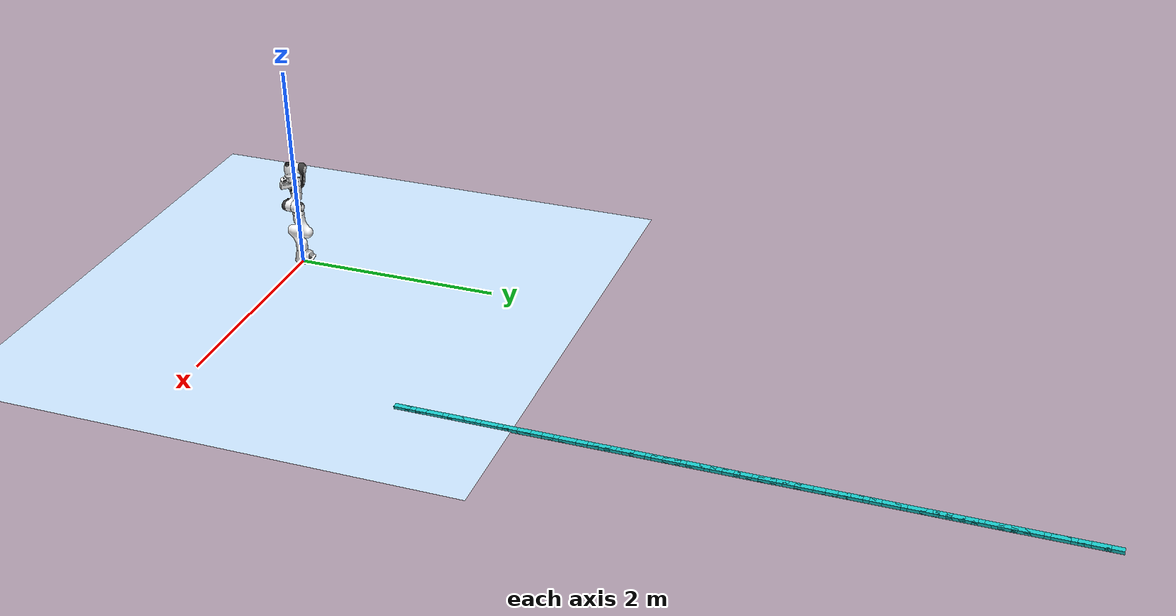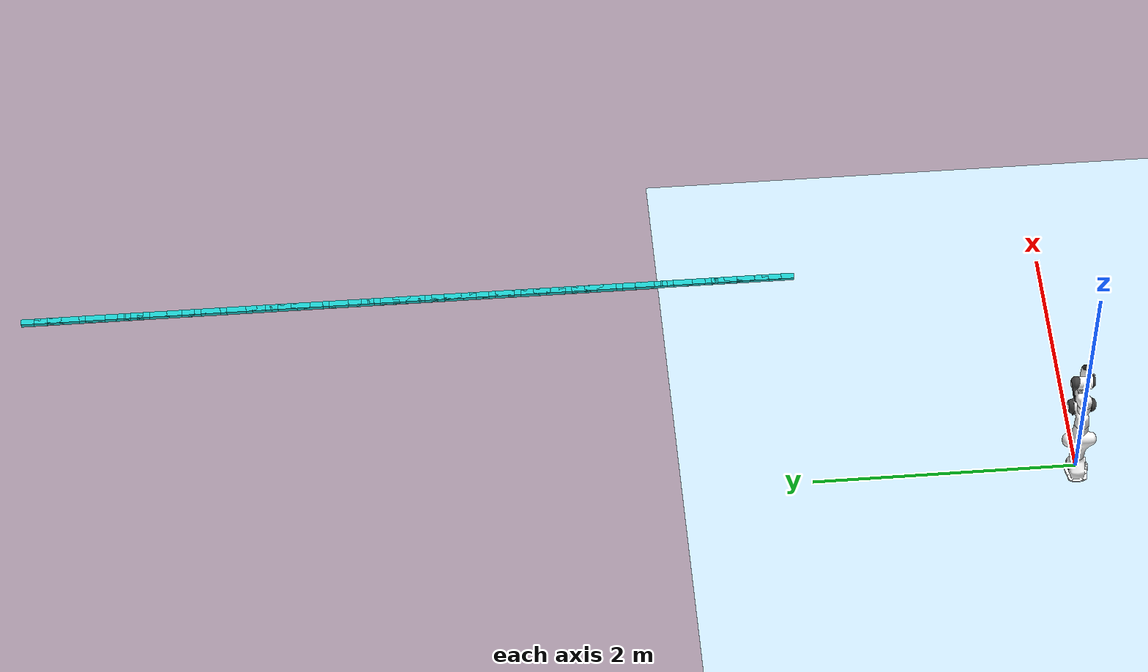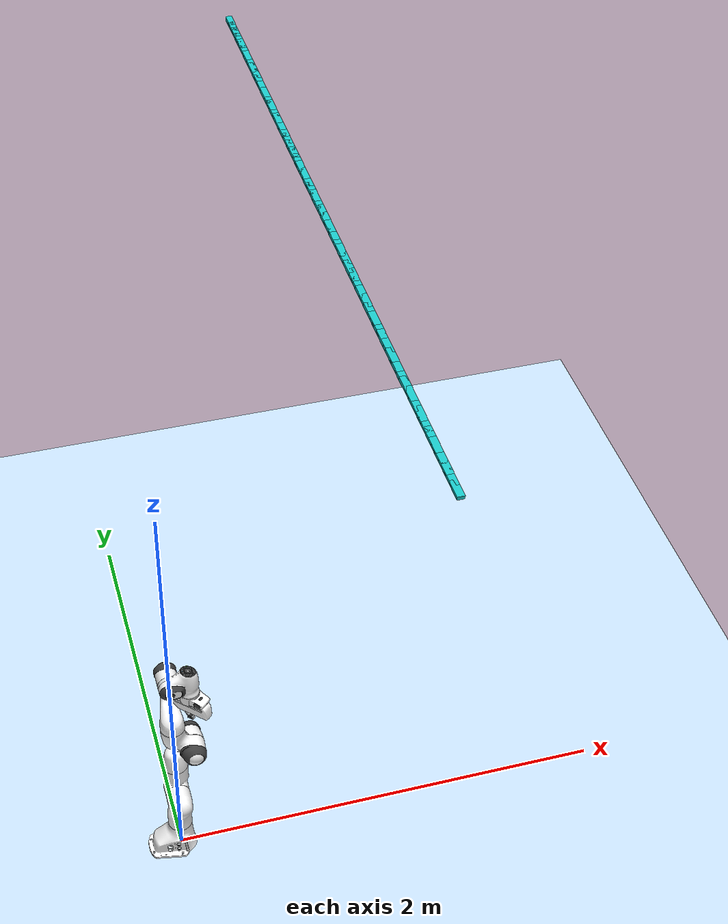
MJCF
<?xml version='1.0' encoding='utf-8'?>
<mujoco model="panda">
  <compiler angle="radian" meshdir="assets" autolimits="true" />

  <option integrator="implicit" />
  <option gravity="0 0 -9.81" />

  <default>
    <default class="panda">
      <material specular="0.5" shininess="0.25" />
      <joint armature="0.1" damping="1" axis="0 0 1" range="-2.8973 2.8973" />
      <general dyntype="none" biastype="none" ctrlrange="-87 87" forcerange="-87 87" />
      <default class="finger">
        <joint axis="0 1 0" type="slide" range="0 0.04" />
      </default>

      <default class="visual">
        <geom type="mesh" contype="0" conaffinity="0" group="2" />
      </default>
      <default class="collision">
        <geom type="mesh" group="3" />
        <default class="fingertip_pad_collision_1">
          <geom type="box" size="0.0085 0.004 0.0085" pos="0 0.0055 0.0445" />
        </default>
        <default class="fingertip_pad_collision_2">
          <geom type="box" size="0.003 0.002 0.003" pos="0.0055 0.002 0.05" />
        </default>
        <default class="fingertip_pad_collision_3">
          <geom type="box" size="0.003 0.002 0.003" pos="-0.0055 0.002 0.05" />
        </default>
        <default class="fingertip_pad_collision_4">
          <geom type="box" size="0.003 0.002 0.0035" pos="0.0055 0.002 0.0395" />
        </default>
        <default class="fingertip_pad_collision_5">
          <geom type="box" size="0.003 0.002 0.0035" pos="-0.0055 0.002 0.0395" />
        </default>
      </default>
    </default>
  </default>

  <asset>
    <material class="panda" name="white" rgba="1 1 1 1" />
    <material class="panda" name="off_white" rgba="0.901961 0.921569 0.929412 1" />
    <material class="panda" name="black" rgba="0.25 0.25 0.25 1" />
    <material class="panda" name="green" rgba="0 1 0 1" />
    <material class="panda" name="light_blue" rgba="0.039216 0.541176 0.780392 1" />

    <mesh name="link0_c" file="link0.stl" />
    <mesh name="link1_c" file="link1.stl" />
    <mesh name="link2_c" file="link2.stl" />
    <mesh name="link3_c" file="link3.stl" />
    <mesh name="link4_c" file="link4.stl" />
    <mesh name="link5_c0" file="link5_collision_0.obj" />
    <mesh name="link5_c1" file="link5_collision_1.obj" />
    <mesh name="link5_c2" file="link5_collision_2.obj" />
    <mesh name="link6_c" file="link6.stl" />
    <mesh name="link7_c" file="link7.stl" />
    <mesh name="hand_c" file="hand.stl" />

    <mesh file="link0_0.obj" />
    <mesh file="link0_1.obj" />
    <mesh file="link0_2.obj" />
    <mesh file="link0_3.obj" />
    <mesh file="link0_4.obj" />
    <mesh file="link0_5.obj" />
    <mesh file="link0_7.obj" />
    <mesh file="link0_8.obj" />
    <mesh file="link0_9.obj" />
    <mesh file="link0_10.obj" />
    <mesh file="link0_11.obj" />
    <mesh file="link1.obj" />
    <mesh file="link2.obj" />
    <mesh file="link3_0.obj" />
    <mesh file="link3_1.obj" />
    <mesh file="link3_2.obj" />
    <mesh file="link3_3.obj" />
    <mesh file="link4_0.obj" />
    <mesh file="link4_1.obj" />
    <mesh file="link4_2.obj" />
    <mesh file="link4_3.obj" />
    <mesh file="link5_0.obj" />
    <mesh file="link5_1.obj" />
    <mesh file="link5_2.obj" />
    <mesh file="link6_0.obj" />
    <mesh file="link6_1.obj" />
    <mesh file="link6_2.obj" />
    <mesh file="link6_3.obj" />
    <mesh file="link6_4.obj" />
    <mesh file="link6_5.obj" />
    <mesh file="link6_6.obj" />
    <mesh file="link6_7.obj" />
    <mesh file="link6_8.obj" />
    <mesh file="link6_9.obj" />
    <mesh file="link6_10.obj" />
    <mesh file="link6_11.obj" />
    <mesh file="link6_12.obj" />
    <mesh file="link6_13.obj" />
    <mesh file="link6_14.obj" />
    <mesh file="link6_15.obj" />
    <mesh file="link6_16.obj" />
    <mesh file="link7_0.obj" />
    <mesh file="link7_1.obj" />
    <mesh file="link7_2.obj" />
    <mesh file="link7_3.obj" />
    <mesh file="link7_4.obj" />
    <mesh file="link7_5.obj" />
    <mesh file="link7_6.obj" />
    <mesh file="link7_7.obj" />
    <mesh file="hand_0.obj" />
    <mesh file="hand_1.obj" />
    <mesh file="hand_2.obj" />
    <mesh file="hand_3.obj" />
    <mesh file="hand_4.obj" />
    <mesh file="finger_0.obj" />
    <mesh file="finger_1.obj" />
  </asset>

  <worldbody>
    <light name="top" pos="0 0 2" mode="trackcom" />
    <body name="link0" childclass="panda">
      <inertial mass="0.629769" pos="-0.041018 -0.00014 0.049974" fullinertia="0.00315 0.00388 0.004285 8.2904e-7 0.00015 8.2299e-6" />
      <geom mesh="link0_0" material="off_white" class="visual" />
      <geom mesh="link0_1" material="black" class="visual" />
      <geom mesh="link0_2" material="off_white" class="visual" />
      <geom mesh="link0_3" material="black" class="visual" />
      <geom mesh="link0_4" material="off_white" class="visual" />
      <geom mesh="link0_5" material="black" class="visual" />
      <geom mesh="link0_7" material="white" class="visual" />
      <geom mesh="link0_8" material="white" class="visual" />
      <geom mesh="link0_9" material="black" class="visual" />
      <geom mesh="link0_10" material="off_white" class="visual" />
      <geom mesh="link0_11" material="white" class="visual" />
      <geom mesh="link0_c" class="collision" />
      <body name="link1" pos="0 0 0.333">
        <inertial mass="4.970684" pos="0.003875 0.002081 -0.04762" fullinertia="0.70337 0.70661 0.0091170 -0.00013900 0.0067720 0.019169" />
        <joint name="joint1" />
        <geom material="white" mesh="link1" class="visual" />
        <geom mesh="link1_c" class="collision" />
        <body name="link2" quat="1 -1 0 0">
          <inertial mass="0.646926" pos="-0.003141 -0.02872 0.003495" fullinertia="0.0079620 2.8110e-2 2.5995e-2 -3.925e-3 1.0254e-2 7.04e-4" />
          <joint name="joint2" range="-1.7628 1.7628" />
          <geom material="white" mesh="link2" class="visual" />
          <geom mesh="link2_c" class="collision" />
          <body name="link3" pos="0 -0.316 0" quat="1 1 0 0">
            <joint name="joint3" />
            <inertial mass="3.228604" pos="2.7518e-2 3.9252e-2 -6.6502e-2" fullinertia="3.7242e-2 3.6155e-2 1.083e-2 -4.761e-3 -1.1396e-2 -1.2805e-2" />
            <geom mesh="link3_0" material="white" class="visual" />
            <geom mesh="link3_1" material="white" class="visual" />
            <geom mesh="link3_2" material="white" class="visual" />
            <geom mesh="link3_3" material="black" class="visual" />
            <geom mesh="link3_c" class="collision" />
            <body name="link4" pos="0.0825 0 0" quat="1 1 0 0">
              <inertial mass="3.587895" pos="-5.317e-2 1.04419e-1 2.7454e-2" fullinertia="2.5853e-2 1.9552e-2 2.8323e-2 7.796e-3 -1.332e-3 8.641e-3" />
              <joint name="joint4" range="-3.0718 -0.0698" />
              <geom mesh="link4_0" material="white" class="visual" />
              <geom mesh="link4_1" material="white" class="visual" />
              <geom mesh="link4_2" material="black" class="visual" />
              <geom mesh="link4_3" material="white" class="visual" />
              <geom mesh="link4_c" class="collision" />
              <body name="link5" pos="-0.0825 0.384 0" quat="1 -1 0 0">
                <inertial mass="1.225946" pos="-1.1953e-2 4.1065e-2 -3.8437e-2" fullinertia="3.5549e-2 2.9474e-2 8.627e-3 -2.117e-3 -4.037e-3 2.29e-4" />
                <joint name="joint5" />
                <geom mesh="link5_0" material="black" class="visual" />
                <geom mesh="link5_1" material="white" class="visual" />
                <geom mesh="link5_2" material="white" class="visual" />
                <geom mesh="link5_c0" class="collision" />
                <geom mesh="link5_c1" class="collision" />
                <geom mesh="link5_c2" class="collision" />
                <body name="link6" quat="1 1 0 0">
                  <inertial mass="1.666555" pos="6.0149e-2 -1.4117e-2 -1.0517e-2" fullinertia="1.964e-3 4.354e-3 5.433e-3 1.09e-4 -1.158e-3 3.41e-4" />
                  <joint name="joint6" range="-0.0175 3.7525" />
                  <geom mesh="link6_0" material="off_white" class="visual" />
                  <geom mesh="link6_1" material="white" class="visual" />
                  <geom mesh="link6_2" material="black" class="visual" />
                  <geom mesh="link6_3" material="white" class="visual" />
                  <geom mesh="link6_4" material="white" class="visual" />
                  <geom mesh="link6_5" material="white" class="visual" />
                  <geom mesh="link6_6" material="white" class="visual" />
                  <geom mesh="link6_7" material="light_blue" class="visual" />
                  <geom mesh="link6_8" material="light_blue" class="visual" />
                  <geom mesh="link6_9" material="black" class="visual" />
                  <geom mesh="link6_10" material="black" class="visual" />
                  <geom mesh="link6_11" material="white" class="visual" />
                  <geom mesh="link6_12" material="green" class="visual" />
                  <geom mesh="link6_13" material="white" class="visual" />
                  <geom mesh="link6_14" material="black" class="visual" />
                  <geom mesh="link6_15" material="black" class="visual" />
                  <geom mesh="link6_16" material="white" class="visual" />
                  <geom mesh="link6_c" class="collision" />
                  <body name="link7" pos="0.088 0 0" quat="1 1 0 0">
                    <inertial mass="7.35522e-01" pos="1.0517e-2 -4.252e-3 6.1597e-2" fullinertia="1.2516e-2 1.0027e-2 4.815e-3 -4.28e-4 -1.196e-3 -7.41e-4" />
                    <joint name="joint7" />
                    <geom mesh="link7_0" material="white" class="visual" />
                    <geom mesh="link7_1" material="black" class="visual" />
                    <geom mesh="link7_2" material="black" class="visual" />
                    <geom mesh="link7_3" material="black" class="visual" />
                    <geom mesh="link7_4" material="black" class="visual" />
                    <geom mesh="link7_5" material="black" class="visual" />
                    <geom mesh="link7_6" material="black" class="visual" />
                    <geom mesh="link7_7" material="white" class="visual" />
                    <geom mesh="link7_c" class="collision" />
                    <body name="hand" pos="0 0 0.107" quat="0.9238795 0 0 -0.3826834">
                      <inertial mass="0.73" pos="-0.01 0 0.03" diaginertia="0.001 0.0025 0.0017" />
                      <geom mesh="hand_0" material="off_white" class="visual" />
                      <geom mesh="hand_1" material="black" class="visual" />
                      <geom mesh="hand_2" material="black" class="visual" />
                      <geom mesh="hand_3" material="white" class="visual" />
                      <geom mesh="hand_4" material="off_white" class="visual" />
                      <geom mesh="hand_c" class="collision" />
                      <body name="left_finger" pos="0 0 0.0584">
                        <inertial mass="0.015" pos="0 0 0" diaginertia="2.375e-6 2.375e-6 7.5e-7" />
                        <joint name="finger_joint1" class="finger" />
                        <geom mesh="finger_0" material="off_white" class="visual" />
                        <geom mesh="finger_1" material="black" class="visual" />
                        <geom mesh="finger_0" class="collision" />
                        <geom class="fingertip_pad_collision_1" />
                        <geom class="fingertip_pad_collision_2" />
                        <geom class="fingertip_pad_collision_3" />
                        <geom class="fingertip_pad_collision_4" />
                        <geom class="fingertip_pad_collision_5" />
                      </body>
                      <body name="right_finger" pos="0 0 0.0584" quat="0 0 0 1">
                        <inertial mass="0.015" pos="0 0 0" diaginertia="2.375e-6 2.375e-6 7.5e-7" />
                        <joint name="finger_joint2" class="finger" />
                        <geom mesh="finger_0" material="off_white" class="visual" />
                        <geom mesh="finger_1" material="black" class="visual" />
                        <geom mesh="finger_0" class="collision" />
                        <geom class="fingertip_pad_collision_1" />
                        <geom class="fingertip_pad_collision_2" />
                        <geom class="fingertip_pad_collision_3" />
                        <geom class="fingertip_pad_collision_4" />
                        <geom class="fingertip_pad_collision_5" />
                      </body>
                    </body>
                  </body>
                </body>
              </body>
            </body>
          </body>
        </body>
      </body>
    </body>
    <geom name="ground" type="plane" size="3 3 0.1" rgba="0.8 0.9 1 1" />

  <body name="Domino_0" pos="2.0 2.0 0.0"><geom type="box" density="20" size="0.025 0.075 0.015" rgba="0.1 0.8 0.8 1" /><freejoint /></body><body name="Domino_1" pos="2.0 2.1 0.0"><geom type="box" density="20" size="0.025 0.075 0.015" rgba="0.1 0.8 0.8 1" /><freejoint /></body><body name="Domino_2" pos="2.0 2.2 0.0"><geom type="box" density="20" size="0.025 0.075 0.015" rgba="0.1 0.8 0.8 1" /><freejoint /></body><body name="Domino_3" pos="2.0 2.3 0.0"><geom type="box" density="20" size="0.025 0.075 0.015" rgba="0.1 0.8 0.8 1" /><freejoint /></body><body name="Domino_4" pos="2.0 2.4 0.0"><geom type="box" density="20" size="0.025 0.075 0.015" rgba="0.1 0.8 0.8 1" /><freejoint /></body><body name="Domino_5" pos="2.0 2.5 0.0"><geom type="box" density="20" size="0.025 0.075 0.015" rgba="0.1 0.8 0.8 1" /><freejoint /></body><body name="Domino_6" pos="2.0 2.6 0.0"><geom type="box" density="20" size="0.025 0.075 0.015" rgba="0.1 0.8 0.8 1" /><freejoint /></body><body name="Domino_7" pos="2.0 2.7 0.0"><geom type="box" density="20" size="0.025 0.075 0.015" rgba="0.1 0.8 0.8 1" /><freejoint /></body><body name="Domino_8" pos="2.0 2.8 0.0"><geom type="box" density="20" size="0.025 0.075 0.015" rgba="0.1 0.8 0.8 1" /><freejoint /></body><body name="Domino_9" pos="2.0 2.9 0.0"><geom type="box" density="20" size="0.025 0.075 0.015" rgba="0.1 0.8 0.8 1" /><freejoint /></body><body name="Domino_10" pos="2.0 3.0 0.0"><geom type="box" density="20" size="0.025 0.075 0.015" rgba="0.1 0.8 0.8 1" /><freejoint /></body><body name="Domino_11" pos="2.0 3.1 0.0"><geom type="box" density="20" size="0.025 0.075 0.015" rgba="0.1 0.8 0.8 1" /><freejoint /></body><body name="Domino_12" pos="2.0 3.2 0.0"><geom type="box" density="20" size="0.025 0.075 0.015" rgba="0.1 0.8 0.8 1" /><freejoint /></body><body name="Domino_13" pos="2.0 3.3 0.0"><geom type="box" density="20" size="0.025 0.075 0.015" rgba="0.1 0.8 0.8 1" /><freejoint /></body><body name="Domino_14" pos="2.0 3.4000000000000004 0.0"><geom type="box" density="20" size="0.025 0.075 0.015" rgba="0.1 0.8 0.8 1" /><freejoint /></body><body name="Domino_15" pos="2.0 3.5 0.0"><geom type="box" density="20" size="0.025 0.075 0.015" rgba="0.1 0.8 0.8 1" /><freejoint /></body><body name="Domino_16" pos="2.0 3.6 0.0"><geom type="box" density="20" size="0.025 0.075 0.015" rgba="0.1 0.8 0.8 1" /><freejoint /></body><body name="Domino_17" pos="2.0 3.7 0.0"><geom type="box" density="20" size="0.025 0.075 0.015" rgba="0.1 0.8 0.8 1" /><freejoint /></body><body name="Domino_18" pos="2.0 3.8 0.0"><geom type="box" density="20" size="0.025 0.075 0.015" rgba="0.1 0.8 0.8 1" /><freejoint /></body><body name="Domino_19" pos="2.0 3.9000000000000004 0.0"><geom type="box" density="20" size="0.025 0.075 0.015" rgba="0.1 0.8 0.8 1" /><freejoint /></body><body name="Domino_20" pos="2.0 4.0 0.0"><geom type="box" density="20" size="0.025 0.075 0.015" rgba="0.1 0.8 0.8 1" /><freejoint /></body><body name="Domino_21" pos="2.0 4.1 0.0"><geom type="box" density="20" size="0.025 0.075 0.015" rgba="0.1 0.8 0.8 1" /><freejoint /></body><body name="Domino_22" pos="2.0 4.2 0.0"><geom type="box" density="20" size="0.025 0.075 0.015" rgba="0.1 0.8 0.8 1" /><freejoint /></body><body name="Domino_23" pos="2.0 4.300000000000001 0.0"><geom type="box" density="20" size="0.025 0.075 0.015" rgba="0.1 0.8 0.8 1" /><freejoint /></body><body name="Domino_24" pos="2.0 4.4 0.0"><geom type="box" density="20" size="0.025 0.075 0.015" rgba="0.1 0.8 0.8 1" /><freejoint /></body><body name="Domino_25" pos="2.0 4.5 0.0"><geom type="box" density="20" size="0.025 0.075 0.015" rgba="0.1 0.8 0.8 1" /><freejoint /></body><body name="Domino_26" pos="2.0 4.6 0.0"><geom type="box" density="20" size="0.025 0.075 0.015" rgba="0.1 0.8 0.8 1" /><freejoint /></body><body name="Domino_27" pos="2.0 4.7 0.0"><geom type="box" density="20" size="0.025 0.075 0.015" rgba="0.1 0.8 0.8 1" /><freejoint /></body><body name="Domino_28" pos="2.0 4.800000000000001 0.0"><geom type="box" density="20" size="0.025 0.075 0.015" rgba="0.1 0.8 0.8 1" /><freejoint /></body><body name="Domino_29" pos="2.0 4.9 0.0"><geom type="box" density="20" size="0.025 0.075 0.015" rgba="0.1 0.8 0.8 1" /><freejoint /></body><body name="Domino_30" pos="2.0 5.0 0.0"><geom type="box" density="20" size="0.025 0.075 0.015" rgba="0.1 0.8 0.8 1" /><freejoint /></body><body name="Domino_31" pos="2.0 5.1 0.0"><geom type="box" density="20" size="0.025 0.075 0.015" rgba="0.1 0.8 0.8 1" /><freejoint /></body><body name="Domino_32" pos="2.0 5.2 0.0"><geom type="box" density="20" size="0.025 0.075 0.015" rgba="0.1 0.8 0.8 1" /><freejoint /></body><body name="Domino_33" pos="2.0 5.300000000000001 0.0"><geom type="box" density="20" size="0.025 0.075 0.015" rgba="0.1 0.8 0.8 1" /><freejoint /></body><body name="Domino_34" pos="2.0 5.4 0.0"><geom type="box" density="20" size="0.025 0.075 0.015" rgba="0.1 0.8 0.8 1" /><freejoint /></body><body name="Domino_35" pos="2.0 5.5 0.0"><geom type="box" density="20" size="0.025 0.075 0.015" rgba="0.1 0.8 0.8 1" /><freejoint /></body><body name="Domino_36" pos="2.0 5.6 0.0"><geom type="box" density="20" size="0.025 0.075 0.015" rgba="0.1 0.8 0.8 1" /><freejoint /></body><body name="Domino_37" pos="2.0 5.7 0.0"><geom type="box" density="20" size="0.025 0.075 0.015" rgba="0.1 0.8 0.8 1" /><freejoint /></body><body name="Domino_38" pos="2.0 5.800000000000001 0.0"><geom type="box" density="20" size="0.025 0.075 0.015" rgba="0.1 0.8 0.8 1" /><freejoint /></body><body name="Domino_39" pos="2.0 5.9 0.0"><geom type="box" density="20" size="0.025 0.075 0.015" rgba="0.1 0.8 0.8 1" /><freejoint /></body><body name="Domino_40" pos="2.0 6.0 0.0"><geom type="box" density="20" size="0.025 0.075 0.015" rgba="0.1 0.8 0.8 1" /><freejoint /></body><body name="Domino_41" pos="2.0 6.1000000000000005 0.0"><geom type="box" density="20" size="0.025 0.075 0.015" rgba="0.1 0.8 0.8 1" /><freejoint /></body><body name="Domino_42" pos="2.0 6.2 0.0"><geom type="box" density="20" size="0.025 0.075 0.015" rgba="0.1 0.8 0.8 1" /><freejoint /></body><body name="Domino_43" pos="2.0 6.3 0.0"><geom type="box" density="20" size="0.025 0.075 0.015" rgba="0.1 0.8 0.8 1" /><freejoint /></body><body name="Domino_44" pos="2.0 6.4 0.0"><geom type="box" density="20" size="0.025 0.075 0.015" rgba="0.1 0.8 0.8 1" /><freejoint /></body><body name="Domino_45" pos="2.0 6.5 0.0"><geom type="box" density="20" size="0.025 0.075 0.015" rgba="0.1 0.8 0.8 1" /><freejoint /></body><body name="Domino_46" pos="2.0 6.6000000000000005 0.0"><geom type="box" density="20" size="0.025 0.075 0.015" rgba="0.1 0.8 0.8 1" /><freejoint /></body><body name="Domino_47" pos="2.0 6.7 0.0"><geom type="box" density="20" size="0.025 0.075 0.015" rgba="0.1 0.8 0.8 1" /><freejoint /></body><body name="Domino_48" pos="2.0 6.800000000000001 0.0"><geom type="box" density="20" size="0.025 0.075 0.015" rgba="0.1 0.8 0.8 1" /><freejoint /></body><body name="Domino_49" pos="2.0 6.9 0.0"><geom type="box" density="20" size="0.025 0.075 0.015" rgba="0.1 0.8 0.8 1" /><freejoint /></body><body name="Domino_50" pos="2.0 7.0 0.0"><geom type="box" density="20" size="0.025 0.075 0.015" rgba="0.1 0.8 0.8 1" /><freejoint /></body><body name="Domino_51" pos="2.0 7.1000000000000005 0.0"><geom type="box" density="20" size="0.025 0.075 0.015" rgba="0.1 0.8 0.8 1" /><freejoint /></body><body name="Domino_52" pos="2.0 7.2 0.0"><geom type="box" density="20" size="0.025 0.075 0.015" rgba="0.1 0.8 0.8 1" /><freejoint /></body><body name="Domino_53" pos="2.0 7.300000000000001 0.0"><geom type="box" density="20" size="0.025 0.075 0.015" rgba="0.1 0.8 0.8 1" /><freejoint /></body><body name="Domino_54" pos="2.0 7.4 0.0"><geom type="box" density="20" size="0.025 0.075 0.015" rgba="0.1 0.8 0.8 1" /><freejoint /></body><body name="Domino_55" pos="2.0 7.5 0.0"><geom type="box" density="20" size="0.025 0.075 0.015" rgba="0.1 0.8 0.8 1" /><freejoint /></body><body name="Domino_56" pos="2.0 7.6000000000000005 0.0"><geom type="box" density="20" size="0.025 0.075 0.015" rgba="0.1 0.8 0.8 1" /><freejoint /></body><body name="Domino_57" pos="2.0 7.7 0.0"><geom type="box" density="20" size="0.025 0.075 0.015" rgba="0.1 0.8 0.8 1" /><freejoint /></body><body name="Domino_58" pos="2.0 7.800000000000001 0.0"><geom type="box" density="20" size="0.025 0.075 0.015" rgba="0.1 0.8 0.8 1" /><freejoint /></body><body name="Domino_59" pos="2.0 7.9 0.0"><geom type="box" density="20" size="0.025 0.075 0.015" rgba="0.1 0.8 0.8 1" /><freejoint /></body></worldbody>

  <tendon>
    <fixed name="split">
      <joint joint="finger_joint1" coef="0.5" />
      <joint joint="finger_joint2" coef="0.5" />
    </fixed>
  </tendon>

  <equality>
    <joint joint1="finger_joint1" joint2="finger_joint2" solimp="0.95 0.99 0.001" solref="0.005 1" />
  </equality>

  <actuator>
    <general class="panda" name="actuator1" joint="joint1" gainprm="1" />
    <general class="panda" name="actuator2" joint="joint2" gainprm="1" />
    <general class="panda" name="actuator3" joint="joint3" gainprm="1" />
    <general class="panda" name="actuator4" joint="joint4" gainprm="1" />
    <general class="panda" name="actuator5" joint="joint5" gainprm="1" ctrlrange="-12 12" forcerange="-12 12" />
    <general class="panda" name="actuator6" joint="joint6" gainprm="1" forcerange="-12 12" ctrlrange="-12 12" />
    <general class="panda" name="actuator7" joint="joint7" gainprm="1" ctrlrange="-12 12" forcerange="-12 12" />
    <position name="actuator8" tendon="split" ctrlrange="0.005 0.04" kp="400" />
  </actuator>

</mujoco>
